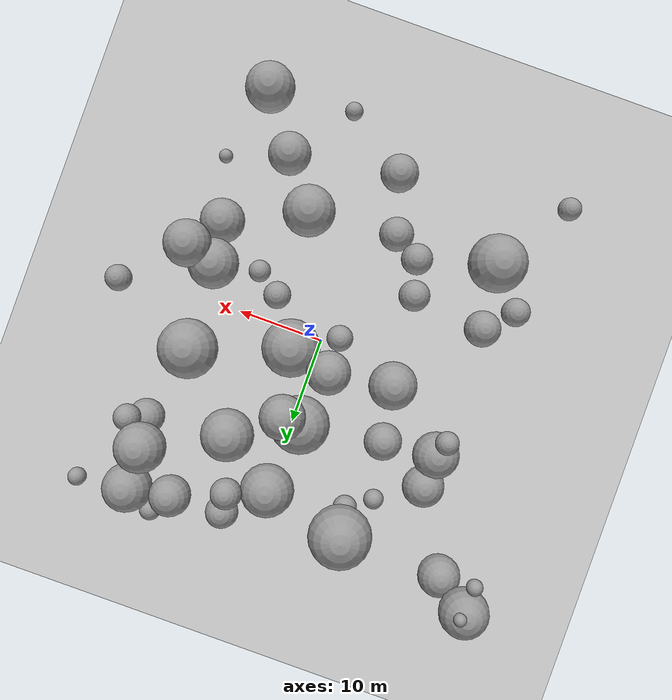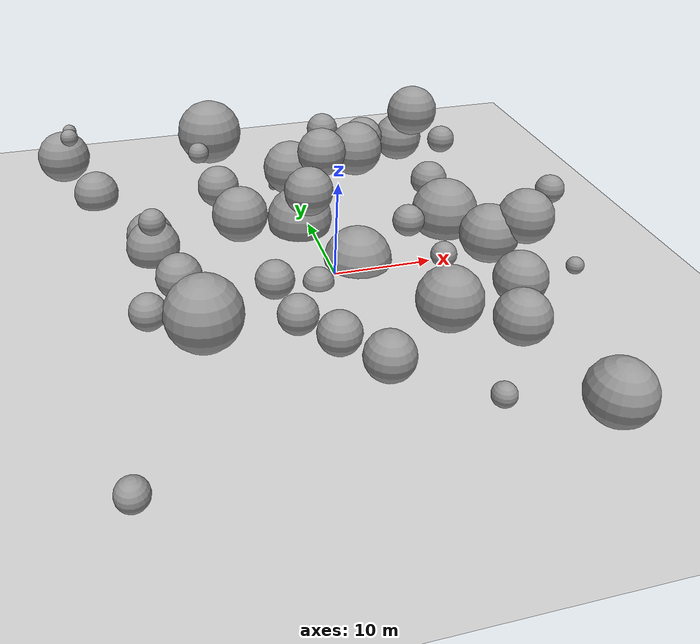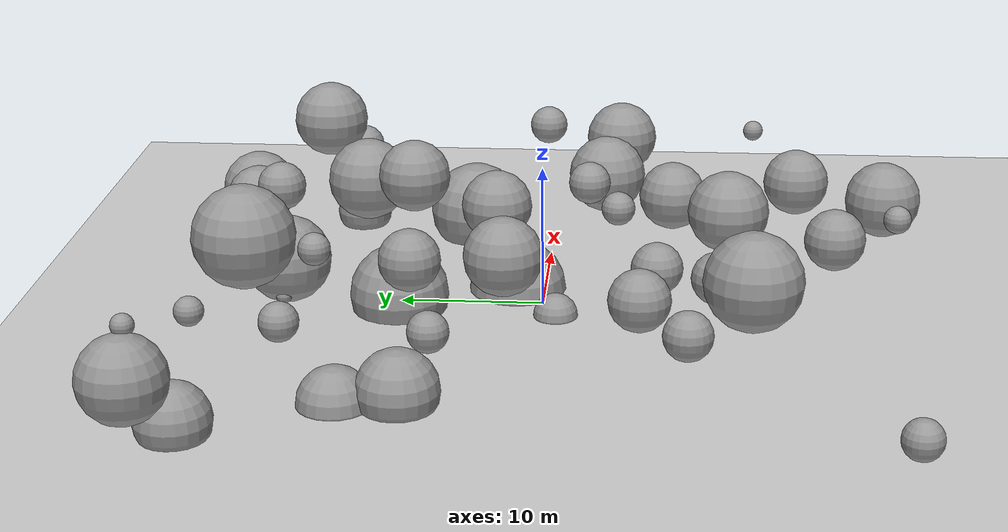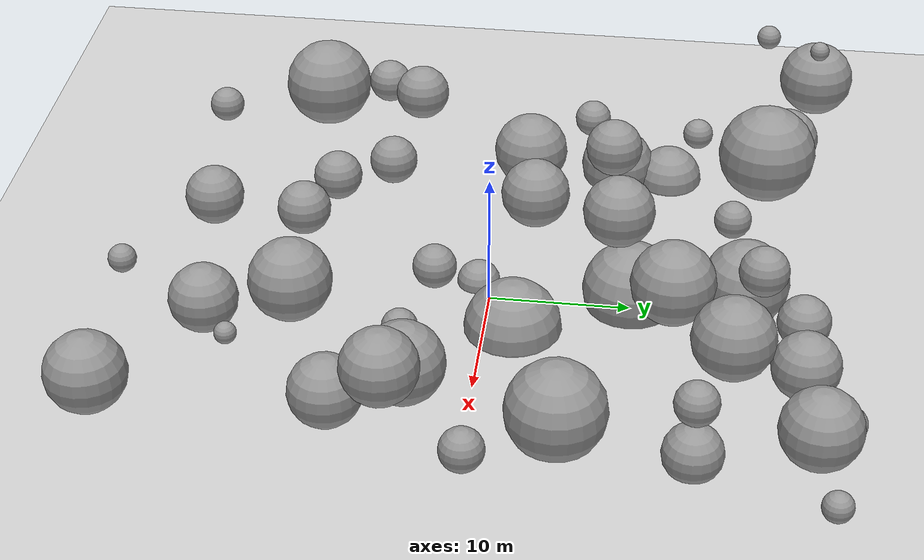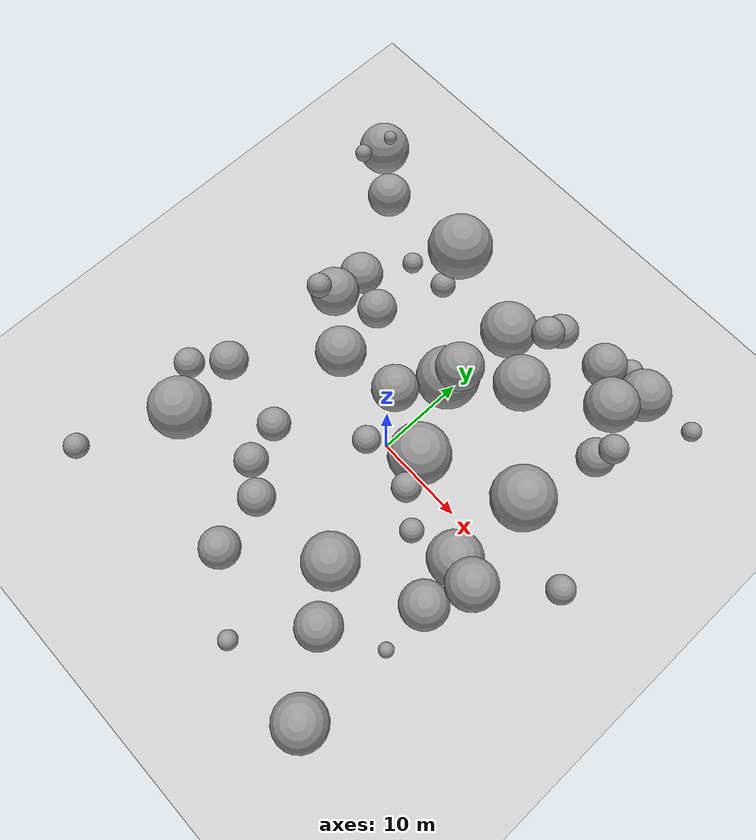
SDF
<?xml version="1.0" ?>
<sdf version='1.7'>
  <world name='default'>
    <light name='sun' type='directional'>
      <cast_shadows>1</cast_shadows>
      <pose>0 0 10 0 -0 0</pose>
      <diffuse>0.8 0.8 0.8 1</diffuse>
      <specular>0.2 0.2 0.2 1</specular>
      <attenuation>
        <range>1000</range>
        <constant>0.9</constant>
        <linear>0.01</linear>
        <quadratic>0.001</quadratic>
      </attenuation>
      <direction>-0.5 0.1 -0.9</direction>
      <spot>
        <inner_angle>0</inner_angle>
        <outer_angle>0</outer_angle>
        <falloff>0</falloff>
      </spot>
    </light>
    <model name='ground_plane'>
      <static>1</static>
      <link name='link'>
        <collision name='collision'>
          <geometry>
            <plane>
              <normal>0 0 1</normal>
              <size>100 100</size>
            </plane>
          </geometry>
          <surface>
            <contact>
              <collide_bitmask>65535</collide_bitmask>
              <ode/>
            </contact>
            <friction>
              <ode>
                <mu>100</mu>
                <mu2>50</mu2>
              </ode>
              <torsional>
                <ode/>
              </torsional>
            </friction>
            <bounce/>
          </surface>
          <max_contacts>10</max_contacts>
        </collision>
        <visual name='visual'>
          <cast_shadows>0</cast_shadows>
          <geometry>
            <plane>
              <normal>0 0 1</normal>
              <size>100 100</size>
            </plane>
          </geometry>
          <material>
            <script>
              <uri>file://media/materials/scripts/gazebo.material</uri>
              <name>Gazebo/Grey</name>
            </script>
          </material>
        </visual>
        <self_collide>0</self_collide>
        <enable_wind>0</enable_wind>
        <kinematic>0</kinematic>
      </link>
    </model>
    <gravity>0 0 -9.8</gravity>
    <magnetic_field>6e-06 2.3e-05 -4.2e-05</magnetic_field>
    <atmosphere type='adiabatic'/>
    <physics type='ode'>
      <max_step_size>0.001</max_step_size>
      <real_time_factor>1</real_time_factor>
      <real_time_update_rate>1000</real_time_update_rate>
    </physics>
    <scene>
      <ambient>0.4 0.4 0.4 1</ambient>
      <background>0.7 0.7 0.7 1</background>
      <shadows>1</shadows>
    </scene>
    <wind/>
    <spherical_coordinates>
      <surface_model>EARTH_WGS84</surface_model>
      <latitude_deg>0</latitude_deg>
      <longitude_deg>0</longitude_deg>
      <elevation>0</elevation>
      <heading_deg>0</heading_deg>
    </spherical_coordinates>

    <model name="sphere_0">
    <static>1</static>
    <pose> -22 21 1 0 0 0 </pose>
      <link name="link">
        <inertial>
          <mass>6304.0448422390255</mass>
          <inertia>
            <ixx>15370.915721975478</ixx>
            <iyy>15370.915721975478</iyy>
            <izz>15370.915721975478</izz>
            <ixy>0</ixy>
            <ixz>0</ixz>
            <iyz>0</iyz>
          </inertia>
        </inertial>
        <collision name="collision">
          <geometry>
            <sphere>
              <radius>2.4689382506158353</radius>
            </sphere>
          </geometry>
        </collision>
        <visual name="visual">
          <geometry>
            <sphere>
              <radius>2.4689382506158353</radius>
            </sphere>
          </geometry>
          <material>
            <script>
              <uri>file://media/materials/scripts/gazebo.material</uri>
              <name>Gazebo/Grey</name>
            </script>
          </material>
        </visual>
      </link>
    </model>

    <model name="sphere_1">
    <static>1</static>
    <pose> -10 8 7 0 0 0 </pose>
      <link name="link">
        <inertial>
          <mass>3614.959449074988</mass>
          <inertia>
            <ixx>6083.777210590986</ixx>
            <iyy>6083.777210590986</iyy>
            <izz>6083.777210590986</izz>
            <ixy>0</ixy>
            <ixz>0</ixz>
            <iyz>0</iyz>
          </inertia>
        </inertial>
        <collision name="collision">
          <geometry>
            <sphere>
              <radius>2.0511855114692956</radius>
            </sphere>
          </geometry>
        </collision>
        <visual name="visual">
          <geometry>
            <sphere>
              <radius>2.0511855114692956</radius>
            </sphere>
          </geometry>
          <material>
            <script>
              <uri>file://media/materials/scripts/gazebo.material</uri>
              <name>Gazebo/Grey</name>
            </script>
          </material>
        </visual>
      </link>
    </model>

    <model name="sphere_2">
    <static>1</static>
    <pose> -24 19 9 0 0 0 </pose>
      <link name="link">
        <inertial>
          <mass>300.7701537424715</mass>
          <inertia>
            <ixx>96.4699710384999</ixx>
            <iyy>96.4699710384999</iyy>
            <izz>96.4699710384999</izz>
            <ixy>0</ixy>
            <ixz>0</ixz>
            <iyz>0</iyz>
          </inertia>
        </inertial>
        <collision name="collision">
          <geometry>
            <sphere>
              <radius>0.8954651933009904</radius>
            </sphere>
          </geometry>
        </collision>
        <visual name="visual">
          <geometry>
            <sphere>
              <radius>0.8954651933009904</radius>
            </sphere>
          </geometry>
          <material>
            <script>
              <uri>file://media/materials/scripts/gazebo.material</uri>
              <name>Gazebo/Grey</name>
            </script>
          </material>
        </visual>
      </link>
    </model>

    <model name="sphere_3">
    <static>1</static>
    <pose> 4 22 3 0 0 0 </pose>
      <link name="link">
        <inertial>
          <mass>2735.4676839567533</mass>
          <inertia>
            <ixx>3822.846846027961</ixx>
            <iyy>3822.846846027961</iyy>
            <izz>3822.846846027961</izz>
            <ixy>0</ixy>
            <ixz>0</ixz>
            <iyz>0</iyz>
          </inertia>
        </inertial>
        <collision name="collision">
          <geometry>
            <sphere>
              <radius>1.8691650836914253</radius>
            </sphere>
          </geometry>
        </collision>
        <visual name="visual">
          <geometry>
            <sphere>
              <radius>1.8691650836914253</radius>
            </sphere>
          </geometry>
          <material>
            <script>
              <uri>file://media/materials/scripts/gazebo.material</uri>
              <name>Gazebo/Grey</name>
            </script>
          </material>
        </visual>
      </link>
    </model>

    <model name="sphere_4">
    <static>1</static>
    <pose> -1 10 1 0 0 0 </pose>
      <link name="link">
        <inertial>
          <mass>17433.930374516916</mass>
          <inertia>
            <ixx>83751.59702305541</ixx>
            <iyy>83751.59702305541</iyy>
            <izz>83751.59702305541</izz>
            <ixy>0</ixy>
            <ixz>0</ixz>
            <iyz>0</iyz>
          </inertia>
        </inertial>
        <collision name="collision">
          <geometry>
            <sphere>
              <radius>3.465523907972898</radius>
            </sphere>
          </geometry>
        </collision>
        <visual name="visual">
          <geometry>
            <sphere>
              <radius>3.465523907972898</radius>
            </sphere>
          </geometry>
          <material>
            <script>
              <uri>file://media/materials/scripts/gazebo.material</uri>
              <name>Gazebo/Grey</name>
            </script>
          </material>
        </visual>
      </link>
    </model>

    <model name="sphere_5">
    <static>1</static>
    <pose> -16 -7 7 0 0 0 </pose>
      <link name="link">
        <inertial>
          <mass>3274.2479315338796</mass>
          <inertia>
            <ixx>5158.461436122134</ixx>
            <iyy>5158.461436122134</iyy>
            <izz>5158.461436122134</izz>
            <ixy>0</ixy>
            <ixz>0</ixz>
            <iyz>0</iyz>
          </inertia>
        </inertial>
        <collision name="collision">
          <geometry>
            <sphere>
              <radius>1.9846060799562095</radius>
            </sphere>
          </geometry>
        </collision>
        <visual name="visual">
          <geometry>
            <sphere>
              <radius>1.9846060799562095</radius>
            </sphere>
          </geometry>
          <material>
            <script>
              <uri>file://media/materials/scripts/gazebo.material</uri>
              <name>Gazebo/Grey</name>
            </script>
          </material>
        </visual>
      </link>
    </model>

    <model name="sphere_6">
    <static>1</static>
    <pose> -17 12 0 0 0 0 </pose>
      <link name="link">
        <inertial>
          <mass>6357.63986233508</mass>
          <inertia>
            <ixx>15589.330230670672</ixx>
            <iyy>15589.330230670672</iyy>
            <izz>15589.330230670672</izz>
            <ixy>0</ixy>
            <ixz>0</ixz>
            <iyz>0</iyz>
          </inertia>
        </inertial>
        <collision name="collision">
          <geometry>
            <sphere>
              <radius>2.475915229713791</radius>
            </sphere>
          </geometry>
        </collision>
        <visual name="visual">
          <geometry>
            <sphere>
              <radius>2.475915229713791</radius>
            </sphere>
          </geometry>
          <material>
            <script>
              <uri>file://media/materials/scripts/gazebo.material</uri>
              <name>Gazebo/Grey</name>
            </script>
          </material>
        </visual>
      </link>
    </model>

    <model name="sphere_7">
    <static>1</static>
    <pose> -19 -10 6 0 0 0 </pose>
      <link name="link">
        <inertial>
          <mass>1644.8838253907272</mass>
          <inertia>
            <ixx>1637.6696551442724</ixx>
            <iyy>1637.6696551442724</iyy>
            <izz>1637.6696551442724</izz>
            <ixy>0</ixy>
            <ixz>0</ixz>
            <iyz>0</iyz>
          </inertia>
        </inertial>
        <collision name="collision">
          <geometry>
            <sphere>
              <radius>1.577667722013219</radius>
            </sphere>
          </geometry>
        </collision>
        <visual name="visual">
          <geometry>
            <sphere>
              <radius>1.577667722013219</radius>
            </sphere>
          </geometry>
          <material>
            <script>
              <uri>file://media/materials/scripts/gazebo.material</uri>
              <name>Gazebo/Grey</name>
            </script>
          </material>
        </visual>
      </link>
    </model>

    <model name="sphere_8">
    <static>1</static>
    <pose> -9 2 7 0 0 0 </pose>
      <link name="link">
        <inertial>
          <mass>7637.3046018213645</mass>
          <inertia>
            <ixx>21162.53902361407</ixx>
            <iyy>21162.53902361407</iyy>
            <izz>21162.53902361407</izz>
            <ixy>0</ixy>
            <ixz>0</ixz>
            <iyz>0</iyz>
          </inertia>
        </inertial>
        <collision name="collision">
          <geometry>
            <sphere>
              <radius>2.631987572097781</radius>
            </sphere>
          </geometry>
        </collision>
        <visual name="visual">
          <geometry>
            <sphere>
              <radius>2.631987572097781</radius>
            </sphere>
          </geometry>
          <material>
            <script>
              <uri>file://media/materials/scripts/gazebo.material</uri>
              <name>Gazebo/Grey</name>
            </script>
          </material>
        </visual>
      </link>
    </model>

    <model name="sphere_9">
    <static>1</static>
    <pose> -9 19 8 0 0 0 </pose>
      <link name="link">
        <inertial>
          <mass>17162.8728969387</mass>
          <inertia>
            <ixx>81592.62312962052</ixx>
            <iyy>81592.62312962052</iyy>
            <izz>81592.62312962052</izz>
            <ixy>0</ixy>
            <ixz>0</ixz>
            <iyz>0</iyz>
          </inertia>
        </inertial>
        <collision name="collision">
          <geometry>
            <sphere>
              <radius>3.4474697091574025</radius>
            </sphere>
          </geometry>
        </collision>
        <visual name="visual">
          <geometry>
            <sphere>
              <radius>3.4474697091574025</radius>
            </sphere>
          </geometry>
          <material>
            <script>
              <uri>file://media/materials/scripts/gazebo.material</uri>
              <name>Gazebo/Grey</name>
            </script>
          </material>
        </visual>
      </link>
    </model>

    <model name="sphere_10">
    <static>1</static>
    <pose> 23 1 6 0 0 0 </pose>
      <link name="link">
        <inertial>
          <mass>1303.3993826508504</mass>
          <inertia>
            <ixx>1111.2116094128164</ixx>
            <iyy>1111.2116094128164</iyy>
            <izz>1111.2116094128164</izz>
            <ixy>0</ixy>
            <ixz>0</ixz>
            <iyz>0</iyz>
          </inertia>
        </inertial>
        <collision name="collision">
          <geometry>
            <sphere>
              <radius>1.459921935304536</radius>
            </sphere>
          </geometry>
        </collision>
        <visual name="visual">
          <geometry>
            <sphere>
              <radius>1.459921935304536</radius>
            </sphere>
          </geometry>
          <material>
            <script>
              <uri>file://media/materials/scripts/gazebo.material</uri>
              <name>Gazebo/Grey</name>
            </script>
          </material>
        </visual>
      </link>
    </model>

    <model name="sphere_11">
    <static>1</static>
    <pose> 9 -5 4 0 0 0 </pose>
      <link name="link">
        <inertial>
          <mass>802.8840087335734</mass>
          <inertia>
            <ixx>495.55165609463813</ixx>
            <iyy>495.55165609463813</iyy>
            <izz>495.55165609463813</izz>
            <ixy>0</ixy>
            <ixz>0</ixz>
            <iyz>0</iyz>
          </inertia>
        </inertial>
        <collision name="collision">
          <geometry>
            <sphere>
              <radius>1.2421901073198702</radius>
            </sphere>
          </geometry>
        </collision>
        <visual name="visual">
          <geometry>
            <sphere>
              <radius>1.2421901073198702</radius>
            </sphere>
          </geometry>
          <material>
            <script>
              <uri>file://media/materials/scripts/gazebo.material</uri>
              <name>Gazebo/Grey</name>
            </script>
          </material>
        </visual>
      </link>
    </model>

    <model name="sphere_12">
    <static>1</static>
    <pose> 2 2 0 0 0 0 </pose>
      <link name="link">
        <inertial>
          <mass>67.90683798653887</mass>
          <inertia>
            <ixx>8.075884502008904</ixx>
            <iyy>8.075884502008904</iyy>
            <izz>8.075884502008904</izz>
            <ixy>0</ixy>
            <ixz>0</ixz>
            <iyz>0</iyz>
          </inertia>
        </inertial>
        <collision name="collision">
          <geometry>
            <sphere>
              <radius>0.5452658513076029</radius>
            </sphere>
          </geometry>
        </collision>
        <visual name="visual">
          <geometry>
            <sphere>
              <radius>0.5452658513076029</radius>
            </sphere>
          </geometry>
          <material>
            <script>
              <uri>file://media/materials/scripts/gazebo.material</uri>
              <name>Gazebo/Grey</name>
            </script>
          </material>
        </visual>
      </link>
    </model>

    <model name="sphere_13">
    <static>1</static>
    <pose> -15 -14 8 0 0 0 </pose>
      <link name="link">
        <inertial>
          <mass>13331.21373307514</mass>
          <inertia>
            <ixx>53552.99169053216</ixx>
            <iyy>53552.99169053216</iyy>
            <izz>53552.99169053216</izz>
            <ixy>0</ixy>
            <ixz>0</ixz>
            <iyz>0</iyz>
          </inertia>
        </inertial>
        <collision name="collision">
          <geometry>
            <sphere>
              <radius>3.169034938793554</radius>
            </sphere>
          </geometry>
        </collision>
        <visual name="visual">
          <geometry>
            <sphere>
              <radius>3.169034938793554</radius>
            </sphere>
          </geometry>
          <material>
            <script>
              <uri>file://media/materials/scripts/gazebo.material</uri>
              <name>Gazebo/Grey</name>
            </script>
          </material>
        </visual>
      </link>
    </model>

    <model name="sphere_14">
    <static>1</static>
    <pose> 3 2 0 0 0 0 </pose>
      <link name="link">
        <inertial>
          <mass>17330.618064283466</mass>
          <inertia>
            <ixx>82926.05472393546</ixx>
            <iyy>82926.05472393546</iyy>
            <izz>82926.05472393546</izz>
            <ixy>0</ixy>
            <ixz>0</ixz>
            <iyz>0</iyz>
          </inertia>
        </inertial>
        <collision name="collision">
          <geometry>
            <sphere>
              <radius>3.4586648533570092</radius>
            </sphere>
          </geometry>
        </collision>
        <visual name="visual">
          <geometry>
            <sphere>
              <radius>3.4586648533570092</radius>
            </sphere>
          </geometry>
          <material>
            <script>
              <uri>file://media/materials/scripts/gazebo.material</uri>
              <name>Gazebo/Grey</name>
            </script>
          </material>
        </visual>
      </link>
    </model>

    <model name="sphere_15">
    <static>1</static>
    <pose> -22 -24 1 0 0 0 </pose>
      <link name="link">
        <inertial>
          <mass>1025.583238097477</mass>
          <inertia>
            <ixx>745.2221854900163</ixx>
            <iyy>745.2221854900163</iyy>
            <izz>745.2221854900163</izz>
            <ixy>0</ixy>
            <ixz>0</ixz>
            <iyz>0</iyz>
          </inertia>
        </inertial>
        <collision name="collision">
          <geometry>
            <sphere>
              <radius>1.3478061539093313</radius>
            </sphere>
          </geometry>
        </collision>
        <visual name="visual">
          <geometry>
            <sphere>
              <radius>1.3478061539093313</radius>
            </sphere>
          </geometry>
          <material>
            <script>
              <uri>file://media/materials/scripts/gazebo.material</uri>
              <name>Gazebo/Grey</name>
            </script>
          </material>
        </visual>
      </link>
    </model>

    <model name="sphere_16">
    <static>1</static>
    <pose> 1 9 9 0 0 0 </pose>
      <link name="link">
        <inertial>
          <mass>6331.580114597177</mass>
          <inertia>
            <ixx>15482.975594072212</ixx>
            <iyy>15482.975594072212</iyy>
            <izz>15482.975594072212</izz>
            <ixy>0</ixy>
            <ixz>0</ixz>
            <iyz>0</iyz>
          </inertia>
        </inertial>
        <collision name="collision">
          <geometry>
            <sphere>
              <radius>2.4725276998307857</radius>
            </sphere>
          </geometry>
        </collision>
        <visual name="visual">
          <geometry>
            <sphere>
              <radius>2.4725276998307857</radius>
            </sphere>
          </geometry>
          <material>
            <script>
              <uri>file://media/materials/scripts/gazebo.material</uri>
              <name>Gazebo/Grey</name>
            </script>
          </material>
        </visual>
      </link>
    </model>

    <model name="sphere_17">
    <static>1</static>
    <pose> 5 -25 5 0 0 0 </pose>
      <link name="link">
        <inertial>
          <mass>412.73709180956837</mass>
          <inertia>
            <ixx>163.47703466977035</ixx>
            <iyy>163.47703466977035</iyy>
            <izz>163.47703466977035</izz>
            <ixy>0</ixy>
            <ixz>0</ixz>
            <iyz>0</iyz>
          </inertia>
        </inertial>
        <collision name="collision">
          <geometry>
            <sphere>
              <radius>0.9950883233912462</radius>
            </sphere>
          </geometry>
        </collision>
        <visual name="visual">
          <geometry>
            <sphere>
              <radius>0.9950883233912462</radius>
            </sphere>
          </geometry>
          <material>
            <script>
              <uri>file://media/materials/scripts/gazebo.material</uri>
              <name>Gazebo/Grey</name>
            </script>
          </material>
        </visual>
      </link>
    </model>

    <model name="sphere_18">
    <static>1</static>
    <pose> 14 -4 5 0 0 0 </pose>
      <link name="link">
        <inertial>
          <mass>9671.974458461413</mass>
          <inertia>
            <ixx>31370.840411934012</ixx>
            <iyy>31370.840411934012</iyy>
            <izz>31370.840411934012</izz>
            <ixy>0</ixy>
            <ixz>0</ixz>
            <iyz>0</iyz>
          </inertia>
        </inertial>
        <collision name="collision">
          <geometry>
            <sphere>
              <radius>2.8475772235510735</radius>
            </sphere>
          </geometry>
        </collision>
        <visual name="visual">
          <geometry>
            <sphere>
              <radius>2.8475772235510735</radius>
            </sphere>
          </geometry>
          <material>
            <script>
              <uri>file://media/materials/scripts/gazebo.material</uri>
              <name>Gazebo/Grey</name>
            </script>
          </material>
        </visual>
      </link>
    </model>

    <model name="sphere_19">
    <static>1</static>
    <pose> -7 -12 5 0 0 0 </pose>
      <link name="link">
        <inertial>
          <mass>2288.310301973909</mass>
          <inertia>
            <ixx>2839.176847158699</ixx>
            <iyy>2839.176847158699</iyy>
            <izz>2839.176847158699</izz>
            <ixy>0</ixy>
            <ixz>0</ixz>
            <iyz>0</iyz>
          </inertia>
        </inertial>
        <collision name="collision">
          <geometry>
            <sphere>
              <radius>1.7612003732619348</radius>
            </sphere>
          </geometry>
        </collision>
        <visual name="visual">
          <geometry>
            <sphere>
              <radius>1.7612003732619348</radius>
            </sphere>
          </geometry>
          <material>
            <script>
              <uri>file://media/materials/scripts/gazebo.material</uri>
              <name>Gazebo/Grey</name>
            </script>
          </material>
        </visual>
      </link>
    </model>

    <model name="sphere_20">
    <static>1</static>
    <pose> -2 -1 0 0 0 0 </pose>
      <link name="link">
        <inertial>
          <mass>1549.3632262910603</mass>
          <inertia>
            <ixx>1482.2552307769074</ixx>
            <iyy>1482.2552307769074</iyy>
            <izz>1482.2552307769074</izz>
            <ixy>0</ixy>
            <ixz>0</ixz>
            <iyz>0</iyz>
          </inertia>
        </inertial>
        <collision name="collision">
          <geometry>
            <sphere>
              <radius>1.5465176405296739</radius>
            </sphere>
          </geometry>
        </collision>
        <visual name="visual">
          <geometry>
            <sphere>
              <radius>1.5465176405296739</radius>
            </sphere>
          </geometry>
          <material>
            <script>
              <uri>file://media/materials/scripts/gazebo.material</uri>
              <name>Gazebo/Grey</name>
            </script>
          </material>
        </visual>
      </link>
    </model>

    <model name="sphere_21">
    <static>1</static>
    <pose> 6 -13 5 0 0 0 </pose>
      <link name="link">
        <inertial>
          <mass>10437.80872239945</mass>
          <inertia>
            <ixx>35619.116395667545</ixx>
            <iyy>35619.116395667545</iyy>
            <izz>35619.116395667545</izz>
            <ixy>0</ixy>
            <ixz>0</ixz>
            <iyz>0</iyz>
          </inertia>
        </inertial>
        <collision name="collision">
          <geometry>
            <sphere>
              <radius>2.9208342208272895</radius>
            </sphere>
          </geometry>
        </collision>
        <visual name="visual">
          <geometry>
            <sphere>
              <radius>2.9208342208272895</radius>
            </sphere>
          </geometry>
          <material>
            <script>
              <uri>file://media/materials/scripts/gazebo.material</uri>
              <name>Gazebo/Grey</name>
            </script>
          </material>
        </visual>
      </link>
    </model>

    <model name="sphere_22">
    <static>1</static>
    <pose> -2 3 8 0 0 0 </pose>
      <link name="link">
        <inertial>
          <mass>5750.031626446294</mass>
          <inertia>
            <ixx>13186.148857234906</ixx>
            <iyy>13186.148857234906</iyy>
            <izz>13186.148857234906</izz>
            <ixy>0</ixy>
            <ixz>0</ixz>
            <iyz>0</iyz>
          </inertia>
        </inertial>
        <collision name="collision">
          <geometry>
            <sphere>
              <radius>2.394384402186518</radius>
            </sphere>
          </geometry>
        </collision>
        <visual name="visual">
          <geometry>
            <sphere>
              <radius>2.394384402186518</radius>
            </sphere>
          </geometry>
          <material>
            <script>
              <uri>file://media/materials/scripts/gazebo.material</uri>
              <name>Gazebo/Grey</name>
            </script>
          </material>
        </visual>
      </link>
    </model>

    <model name="sphere_23">
    <static>1</static>
    <pose> 10 -18 6 0 0 0 </pose>
      <link name="link">
        <inertial>
          <mass>5511.783995547832</mass>
          <inertia>
            <ixx>12288.189519641015</ixx>
            <iyy>12288.189519641015</iyy>
            <izz>12288.189519641015</izz>
            <ixy>0</ixy>
            <ixz>0</ixz>
            <iyz>0</iyz>
          </inertia>
        </inertial>
        <collision name="collision">
          <geometry>
            <sphere>
              <radius>2.3608470950152207</radius>
            </sphere>
          </geometry>
        </collision>
        <visual name="visual">
          <geometry>
            <sphere>
              <radius>2.3608470950152207</radius>
            </sphere>
          </geometry>
          <material>
            <script>
              <uri>file://media/materials/scripts/gazebo.material</uri>
              <name>Gazebo/Grey</name>
            </script>
          </material>
        </visual>
      </link>
    </model>

    <model name="sphere_24">
    <static>1</static>
    <pose> -2 -20 6 0 0 0 </pose>
      <link name="link">
        <inertial>
          <mass>3810.0031753762705</mass>
          <inertia>
            <ixx>6640.6381261397455</ixx>
            <iyy>6640.6381261397455</iyy>
            <izz>6640.6381261397455</izz>
            <ixy>0</ixy>
            <ixz>0</ixz>
            <iyz>0</iyz>
          </inertia>
        </inertial>
        <collision name="collision">
          <geometry>
            <sphere>
              <radius>2.087431547846422</radius>
            </sphere>
          </geometry>
        </collision>
        <visual name="visual">
          <geometry>
            <sphere>
              <radius>2.087431547846422</radius>
            </sphere>
          </geometry>
          <material>
            <script>
              <uri>file://media/materials/scripts/gazebo.material</uri>
              <name>Gazebo/Grey</name>
            </script>
          </material>
        </visual>
      </link>
    </model>

    <model name="sphere_25">
    <static>1</static>
    <pose> 0 18 3 0 0 0 </pose>
      <link name="link">
        <inertial>
          <mass>12116.623268982588</mass>
          <inertia>
            <ixx>45670.62203629303</ixx>
            <iyy>45670.62203629303</iyy>
            <izz>45670.62203629303</izz>
            <ixy>0</ixy>
            <ixz>0</ixz>
            <iyz>0</iyz>
          </inertia>
        </inertial>
        <collision name="collision">
          <geometry>
            <sphere>
              <radius>3.0697122353188653</radius>
            </sphere>
          </geometry>
        </collision>
        <visual name="visual">
          <geometry>
            <sphere>
              <radius>3.0697122353188653</radius>
            </sphere>
          </geometry>
          <material>
            <script>
              <uri>file://media/materials/scripts/gazebo.material</uri>
              <name>Gazebo/Grey</name>
            </script>
          </material>
        </visual>
      </link>
    </model>

    <model name="sphere_26">
    <static>1</static>
    <pose> -11 14 8 0 0 0 </pose>
      <link name="link">
        <inertial>
          <mass>513.7556381328399</mass>
          <inertia>
            <ixx>235.46620633168817</ixx>
            <iyy>235.46620633168817</iyy>
            <izz>235.46620633168817</izz>
            <ixy>0</ixy>
            <ixz>0</ixz>
            <iyz>0</iyz>
          </inertia>
        </inertial>
        <collision name="collision">
          <geometry>
            <sphere>
              <radius>1.0704243928219066</radius>
            </sphere>
          </geometry>
        </collision>
        <visual name="visual">
          <geometry>
            <sphere>
              <radius>1.0704243928219066</radius>
            </sphere>
          </geometry>
          <material>
            <script>
              <uri>file://media/materials/scripts/gazebo.material</uri>
              <name>Gazebo/Grey</name>
            </script>
          </material>
        </visual>
      </link>
    </model>

    <model name="sphere_27">
    <static>1</static>
    <pose> -9 17 2 0 0 0 </pose>
      <link name="link">
        <inertial>
          <mass>1101.1587865518961</mass>
          <inertia>
            <ixx>838.9785021657165</ixx>
            <iyy>838.9785021657165</iyy>
            <izz>838.9785021657165</izz>
            <ixy>0</ixy>
            <ixz>0</ixz>
            <iyz>0</iyz>
          </inertia>
        </inertial>
        <collision name="collision">
          <geometry>
            <sphere>
              <radius>1.3801314304795218</radius>
            </sphere>
          </geometry>
        </collision>
        <visual name="visual">
          <geometry>
            <sphere>
              <radius>1.3801314304795218</radius>
            </sphere>
          </geometry>
          <material>
            <script>
              <uri>file://media/materials/scripts/gazebo.material</uri>
              <name>Gazebo/Grey</name>
            </script>
          </material>
        </visual>
      </link>
    </model>

    <model name="sphere_28">
    <static>1</static>
    <pose> -25 23 5 0 0 0 </pose>
      <link name="link">
        <inertial>
          <mass>9298.30319558398</mass>
          <inertia>
            <ixx>29376.976156946108</ixx>
            <iyy>29376.976156946108</iyy>
            <izz>29376.976156946108</izz>
            <ixy>0</ixy>
            <ixz>0</ixz>
            <iyz>0</iyz>
          </inertia>
        </inertial>
        <collision name="collision">
          <geometry>
            <sphere>
              <radius>2.8104230455707313</radius>
            </sphere>
          </geometry>
        </collision>
        <visual name="visual">
          <geometry>
            <sphere>
              <radius>2.8104230455707313</radius>
            </sphere>
          </geometry>
          <material>
            <script>
              <uri>file://media/materials/scripts/gazebo.material</uri>
              <name>Gazebo/Grey</name>
            </script>
          </material>
        </visual>
      </link>
    </model>

    <model name="sphere_29">
    <static>1</static>
    <pose> 15 -9 3 0 0 0 </pose>
      <link name="link">
        <inertial>
          <mass>6913.292294427958</mass>
          <inertia>
            <ixx>17925.68596643845</ixx>
            <iyy>17925.68596643845</iyy>
            <izz>17925.68596643845</izz>
            <ixy>0</ixy>
            <ixz>0</ixz>
            <iyz>0</iyz>
          </inertia>
        </inertial>
        <collision name="collision">
          <geometry>
            <sphere>
              <radius>2.546041255893368</radius>
            </sphere>
          </geometry>
        </collision>
        <visual name="visual">
          <geometry>
            <sphere>
              <radius>2.546041255893368</radius>
            </sphere>
          </geometry>
          <material>
            <script>
              <uri>file://media/materials/scripts/gazebo.material</uri>
              <name>Gazebo/Grey</name>
            </script>
          </material>
        </visual>
      </link>
    </model>

    <model name="sphere_30">
    <static>1</static>
    <pose> 17 -5 7 0 0 0 </pose>
      <link name="link">
        <inertial>
          <mass>7545.304896355475</mass>
          <inertia>
            <ixx>20739.370718549308</ixx>
            <iyy>20739.370718549308</iyy>
            <izz>20739.370718549308</izz>
            <ixy>0</ixy>
            <ixz>0</ixz>
            <iyz>0</iyz>
          </inertia>
        </inertial>
        <collision name="collision">
          <geometry>
            <sphere>
              <radius>2.621376458073707</radius>
            </sphere>
          </geometry>
        </collision>
        <visual name="visual">
          <geometry>
            <sphere>
              <radius>2.621376458073707</radius>
            </sphere>
          </geometry>
          <material>
            <script>
              <uri>file://media/materials/scripts/gazebo.material</uri>
              <name>Gazebo/Grey</name>
            </script>
          </material>
        </visual>
      </link>
    </model>

    <model name="sphere_31">
    <static>1</static>
    <pose> -17 7 1 0 0 0 </pose>
      <link name="link">
        <inertial>
          <mass>1342.1753182257628</mass>
          <inertia>
            <ixx>1166.8534968189517</ixx>
            <iyy>1166.8534968189517</iyy>
            <izz>1166.8534968189517</izz>
            <ixy>0</ixy>
            <ixz>0</ixz>
            <iyz>0</iyz>
          </inertia>
        </inertial>
        <collision name="collision">
          <geometry>
            <sphere>
              <radius>1.4742581804034165</radius>
            </sphere>
          </geometry>
        </collision>
        <visual name="visual">
          <geometry>
            <sphere>
              <radius>1.4742581804034165</radius>
            </sphere>
          </geometry>
          <material>
            <script>
              <uri>file://media/materials/scripts/gazebo.material</uri>
              <name>Gazebo/Grey</name>
            </script>
          </material>
        </visual>
      </link>
    </model>

    <model name="sphere_32">
    <static>1</static>
    <pose> 4 19 7 0 0 0 </pose>
      <link name="link">
        <inertial>
          <mass>2131.7112121429636</mass>
          <inertia>
            <ixx>2522.7925175141327</ixx>
            <iyy>2522.7925175141327</iyy>
            <izz>2522.7925175141327</izz>
            <ixy>0</ixy>
            <ixz>0</ixz>
            <iyz>0</iyz>
          </inertia>
        </inertial>
        <collision name="collision">
          <geometry>
            <sphere>
              <radius>1.720071843250976</radius>
            </sphere>
          </geometry>
        </collision>
        <visual name="visual">
          <geometry>
            <sphere>
              <radius>1.720071843250976</radius>
            </sphere>
          </geometry>
          <material>
            <script>
              <uri>file://media/materials/scripts/gazebo.material</uri>
              <name>Gazebo/Grey</name>
            </script>
          </material>
        </visual>
      </link>
    </model>

    <model name="sphere_33">
    <static>1</static>
    <pose> 6 -3 7 0 0 0 </pose>
      <link name="link">
        <inertial>
          <mass>1381.8827059567348</mass>
          <inertia>
            <ixx>1224.9533639506901</ixx>
            <iyy>1224.9533639506901</iyy>
            <izz>1224.9533639506901</izz>
            <ixy>0</ixy>
            <ixz>0</ixz>
            <iyz>0</iyz>
          </inertia>
        </inertial>
        <collision name="collision">
          <geometry>
            <sphere>
              <radius>1.4886554468799855</radius>
            </sphere>
          </geometry>
        </collision>
        <visual name="visual">
          <geometry>
            <sphere>
              <radius>1.4886554468799855</radius>
            </sphere>
          </geometry>
          <material>
            <script>
              <uri>file://media/materials/scripts/gazebo.material</uri>
              <name>Gazebo/Grey</name>
            </script>
          </material>
        </visual>
      </link>
    </model>

    <model name="sphere_34">
    <static>1</static>
    <pose> -17 6 5 0 0 0 </pose>
      <link name="link">
        <inertial>
          <mass>1002.7860585996068</mass>
          <inertia>
            <ixx>717.8186386914875</ixx>
            <iyy>717.8186386914875</iyy>
            <izz>717.8186386914875</izz>
            <ixy>0</ixy>
            <ixz>0</ixz>
            <iyz>0</iyz>
          </inertia>
        </inertial>
        <collision name="collision">
          <geometry>
            <sphere>
              <radius>1.337744660068021</radius>
            </sphere>
          </geometry>
        </collision>
        <visual name="visual">
          <geometry>
            <sphere>
              <radius>1.337744660068021</radius>
            </sphere>
          </geometry>
          <material>
            <script>
              <uri>file://media/materials/scripts/gazebo.material</uri>
              <name>Gazebo/Grey</name>
            </script>
          </material>
        </visual>
      </link>
    </model>

    <model name="sphere_35">
    <static>1</static>
    <pose> 15 23 3 0 0 0 </pose>
      <link name="link">
        <inertial>
          <mass>9246.868055774496</mass>
          <inertia>
            <ixx>29106.636326370346</ixx>
            <iyy>29106.636326370346</iyy>
            <izz>29106.636326370346</izz>
            <ixy>0</ixy>
            <ixz>0</ixz>
            <iyz>0</iyz>
          </inertia>
        </inertial>
        <collision name="collision">
          <geometry>
            <sphere>
              <radius>2.8052313504137434</radius>
            </sphere>
          </geometry>
        </collision>
        <visual name="visual">
          <geometry>
            <sphere>
              <radius>2.8052313504137434</radius>
            </sphere>
          </geometry>
          <material>
            <script>
              <uri>file://media/materials/scripts/gazebo.material</uri>
              <name>Gazebo/Grey</name>
            </script>
          </material>
        </visual>
      </link>
    </model>

    <model name="sphere_36">
    <static>1</static>
    <pose> 16 -15 8 0 0 0 </pose>
      <link name="link">
        <inertial>
          <mass>166.74519186133662</mass>
          <inertia>
            <ixx>36.093011350849665</ixx>
            <iyy>36.093011350849665</iyy>
            <izz>36.093011350849665</izz>
            <ixy>0</ixy>
            <ixz>0</ixz>
            <iyz>0</iyz>
          </inertia>
        </inertial>
        <collision name="collision">
          <geometry>
            <sphere>
              <radius>0.735622329337597</radius>
            </sphere>
          </geometry>
        </collision>
        <visual name="visual">
          <geometry>
            <sphere>
              <radius>0.735622329337597</radius>
            </sphere>
          </geometry>
          <material>
            <script>
              <uri>file://media/materials/scripts/gazebo.material</uri>
              <name>Gazebo/Grey</name>
            </script>
          </material>
        </visual>
      </link>
    </model>

    <model name="sphere_37">
    <static>1</static>
    <pose> 14 17 9 0 0 0 </pose>
      <link name="link">
        <inertial>
          <mass>8612.25120822306</mass>
          <inertia>
            <ixx>25854.05888983777</ixx>
            <iyy>25854.05888983777</iyy>
            <izz>25854.05888983777</izz>
            <ixy>0</ixy>
            <ixz>0</ixz>
            <iyz>0</iyz>
          </inertia>
        </inertial>
        <collision name="collision">
          <geometry>
            <sphere>
              <radius>2.739529785227139</radius>
            </sphere>
          </geometry>
        </collision>
        <visual name="visual">
          <geometry>
            <sphere>
              <radius>2.739529785227139</radius>
            </sphere>
          </geometry>
          <material>
            <script>
              <uri>file://media/materials/scripts/gazebo.material</uri>
              <name>Gazebo/Grey</name>
            </script>
          </material>
        </visual>
      </link>
    </model>

    <model name="sphere_38">
    <static>1</static>
    <pose> 16 15 1 0 0 0 </pose>
      <link name="link">
        <inertial>
          <mass>3749.8150389199386</mass>
          <inertia>
            <ixx>6466.719091317763</ixx>
            <iyy>6466.719091317763</iyy>
            <izz>6466.719091317763</izz>
            <ixy>0</ixy>
            <ixz>0</ixz>
            <iyz>0</iyz>
          </inertia>
        </inertial>
        <collision name="collision">
          <geometry>
            <sphere>
              <radius>2.0763811571647377</radius>
            </sphere>
          </geometry>
        </collision>
        <visual name="visual">
          <geometry>
            <sphere>
              <radius>2.0763811571647377</radius>
            </sphere>
          </geometry>
          <material>
            <script>
              <uri>file://media/materials/scripts/gazebo.material</uri>
              <name>Gazebo/Grey</name>
            </script>
          </material>
        </visual>
      </link>
    </model>

    <model name="sphere_39">
    <static>1</static>
    <pose> 14 6 2 0 0 0 </pose>
      <link name="link">
        <inertial>
          <mass>17712.873278333827</mass>
          <inertia>
            <ixx>85996.86336253484</ixx>
            <iyy>85996.86336253484</iyy>
            <izz>85996.86336253484</izz>
            <ixy>0</ixy>
            <ixz>0</ixz>
            <iyz>0</iyz>
          </inertia>
        </inertial>
        <collision name="collision">
          <geometry>
            <sphere>
              <radius>3.483908995398422</radius>
            </sphere>
          </geometry>
        </collision>
        <visual name="visual">
          <geometry>
            <sphere>
              <radius>3.483908995398422</radius>
            </sphere>
          </geometry>
          <material>
            <script>
              <uri>file://media/materials/scripts/gazebo.material</uri>
              <name>Gazebo/Grey</name>
            </script>
          </material>
        </visual>
      </link>
    </model>

    <model name="sphere_40">
    <static>1</static>
    <pose> -17 8 1 0 0 0 </pose>
      <link name="link">
        <inertial>
          <mass>8580.777118286638</mass>
          <inertia>
            <ixx>25696.77494819666</ixx>
            <iyy>25696.77494819666</iyy>
            <izz>25696.77494819666</izz>
            <ixy>0</ixy>
            <ixz>0</ixz>
            <iyz>0</iyz>
          </inertia>
        </inertial>
        <collision name="collision">
          <geometry>
            <sphere>
              <radius>2.736188442139107</radius>
            </sphere>
          </geometry>
        </collision>
        <visual name="visual">
          <geometry>
            <sphere>
              <radius>2.736188442139107</radius>
            </sphere>
          </geometry>
          <material>
            <script>
              <uri>file://media/materials/scripts/gazebo.material</uri>
              <name>Gazebo/Grey</name>
            </script>
          </material>
        </visual>
      </link>
    </model>

    <model name="sphere_41">
    <static>1</static>
    <pose> 12 25 1 0 0 0 </pose>
      <link name="link">
        <inertial>
          <mass>846.1875593750759</mass>
          <inertia>
            <ixx>540.8937690990784</ixx>
            <iyy>540.8937690990784</iyy>
            <izz>540.8937690990784</izz>
            <ixy>0</ixy>
            <ixz>0</ixz>
            <iyz>0</iyz>
          </inertia>
        </inertial>
        <collision name="collision">
          <geometry>
            <sphere>
              <radius>1.2641327290579971</radius>
            </sphere>
          </geometry>
        </collision>
        <visual name="visual">
          <geometry>
            <sphere>
              <radius>1.2641327290579971</radius>
            </sphere>
          </geometry>
          <material>
            <script>
              <uri>file://media/materials/scripts/gazebo.material</uri>
              <name>Gazebo/Grey</name>
            </script>
          </material>
        </visual>
      </link>
    </model>

    <model name="sphere_42">
    <static>1</static>
    <pose> -24 23 8 0 0 0 </pose>
      <link name="link">
        <inertial>
          <mass>161.3821592761985</mass>
          <inertia>
            <ixx>34.17906057283528</ixx>
            <iyy>34.17906057283528</iyy>
            <izz>34.17906057283528</izz>
            <ixy>0</ixy>
            <ixz>0</ixz>
            <iyz>0</iyz>
          </inertia>
        </inertial>
        <collision name="collision">
          <geometry>
            <sphere>
              <radius>0.7276496155542503</radius>
            </sphere>
          </geometry>
        </collision>
        <visual name="visual">
          <geometry>
            <sphere>
              <radius>0.7276496155542503</radius>
            </sphere>
          </geometry>
          <material>
            <script>
              <uri>file://media/materials/scripts/gazebo.material</uri>
              <name>Gazebo/Grey</name>
            </script>
          </material>
        </visual>
      </link>
    </model>

    <model name="sphere_43">
    <static>1</static>
    <pose> 10 22 4 0 0 0 </pose>
      <link name="link">
        <inertial>
          <mass>5444.342065235752</mass>
          <inertia>
            <ixx>12038.616825476514</ixx>
            <iyy>12038.616825476514</iyy>
            <izz>12038.616825476514</izz>
            <ixy>0</ixy>
            <ixz>0</ixz>
            <iyz>0</iyz>
          </inertia>
        </inertial>
        <collision name="collision">
          <geometry>
            <sphere>
              <radius>2.3511784808018454</radius>
            </sphere>
          </geometry>
        </collision>
        <visual name="visual">
          <geometry>
            <sphere>
              <radius>2.3511784808018454</radius>
            </sphere>
          </geometry>
          <material>
            <script>
              <uri>file://media/materials/scripts/gazebo.material</uri>
              <name>Gazebo/Grey</name>
            </script>
          </material>
        </visual>
      </link>
    </model>

    <model name="sphere_44">
    <static>1</static>
    <pose> -8 -8 6 0 0 0 </pose>
      <link name="link">
        <inertial>
          <mass>2137.010140439859</mass>
          <inertia>
            <ixx>2533.2529480547037</ixx>
            <iyy>2533.2529480547037</iyy>
            <izz>2533.2529480547037</izz>
            <ixy>0</ixy>
            <ixz>0</ixz>
            <iyz>0</iyz>
          </inertia>
        </inertial>
        <collision name="collision">
          <geometry>
            <sphere>
              <radius>1.7214958941153304</radius>
            </sphere>
          </geometry>
        </collision>
        <visual name="visual">
          <geometry>
            <sphere>
              <radius>1.7214958941153304</radius>
            </sphere>
          </geometry>
          <material>
            <script>
              <uri>file://media/materials/scripts/gazebo.material</uri>
              <name>Gazebo/Grey</name>
            </script>
          </material>
        </visual>
      </link>
    </model>

    <model name="sphere_45">
    <static>1</static>
    <pose> -2 18 1 0 0 0 </pose>
      <link name="link">
        <inertial>
          <mass>79.459208834573</mass>
          <inertia>
            <ixx>10.493200694799743</ixx>
            <iyy>10.493200694799743</iyy>
            <izz>10.493200694799743</izz>
            <ixy>0</ixy>
            <ixz>0</ixz>
            <iyz>0</iyz>
          </inertia>
        </inertial>
        <collision name="collision">
          <geometry>
            <sphere>
              <radius>0.5745818135432242</radius>
            </sphere>
          </geometry>
        </collision>
        <visual name="visual">
          <geometry>
            <sphere>
              <radius>0.5745818135432242</radius>
            </sphere>
          </geometry>
          <material>
            <script>
              <uri>file://media/materials/scripts/gazebo.material</uri>
              <name>Gazebo/Grey</name>
            </script>
          </material>
        </visual>
      </link>
    </model>

    <model name="sphere_46">
    <static>1</static>
    <pose> 21 24 2 0 0 0 </pose>
      <link name="link">
        <inertial>
          <mass>476.97447704698527</mass>
          <inertia>
            <ixx>208.04605545106685</ixx>
            <iyy>208.04605545106685</iyy>
            <izz>208.04605545106685</izz>
            <ixy>0</ixy>
            <ixz>0</ixz>
            <iyz>0</iyz>
          </inertia>
        </inertial>
        <collision name="collision">
          <geometry>
            <sphere>
              <radius>1.0442444532173707</radius>
            </sphere>
          </geometry>
        </collision>
        <visual name="visual">
          <geometry>
            <sphere>
              <radius>1.0442444532173707</radius>
            </sphere>
          </geometry>
          <material>
            <script>
              <uri>file://media/materials/scripts/gazebo.material</uri>
              <name>Gazebo/Grey</name>
            </script>
          </material>
        </visual>
      </link>
    </model>

    <model name="sphere_47">
    <static>1</static>
    <pose> 17 15 6 0 0 0 </pose>
      <link name="link">
        <inertial>
          <mass>1409.3382720866114</mass>
          <inertia>
            <ixx>1265.7841742018231</ixx>
            <iyy>1265.7841742018231</iyy>
            <izz>1265.7841742018231</izz>
            <ixy>0</ixy>
            <ixz>0</ixz>
            <iyz>0</iyz>
          </inertia>
        </inertial>
        <collision name="collision">
          <geometry>
            <sphere>
              <radius>1.498449848552562</radius>
            </sphere>
          </geometry>
        </collision>
        <visual name="visual">
          <geometry>
            <sphere>
              <radius>1.498449848552562</radius>
            </sphere>
          </geometry>
          <material>
            <script>
              <uri>file://media/materials/scripts/gazebo.material</uri>
              <name>Gazebo/Grey</name>
            </script>
          </material>
        </visual>
      </link>
    </model>

    <model name="sphere_48">
    <static>1</static>
    <pose> 15 -25 3 0 0 0 </pose>
      <link name="link">
        <inertial>
          <mass>9585.970793321962</mass>
          <inertia>
            <ixx>30907.301416887014</ixx>
            <iyy>30907.301416887014</iyy>
            <izz>30907.301416887014</izz>
            <ixy>0</ixy>
            <ixz>0</ixz>
            <iyz>0</iyz>
          </inertia>
        </inertial>
        <collision name="collision">
          <geometry>
            <sphere>
              <radius>2.8391118173029875</radius>
            </sphere>
          </geometry>
        </collision>
        <visual name="visual">
          <geometry>
            <sphere>
              <radius>2.8391118173029875</radius>
            </sphere>
          </geometry>
          <material>
            <script>
              <uri>file://media/materials/scripts/gazebo.material</uri>
              <name>Gazebo/Grey</name>
            </script>
          </material>
        </visual>
      </link>
    </model>

    <model name="sphere_49">
    <static>1</static>
    <pose> 6 13 7 0 0 0 </pose>
      <link name="link">
        <inertial>
          <mass>10216.906061909169</mass>
          <inertia>
            <ixx>34371.61345215008</ixx>
            <iyy>34371.61345215008</iyy>
            <izz>34371.61345215008</izz>
            <ixy>0</ixy>
            <ixz>0</ixz>
            <iyz>0</iyz>
          </inertia>
        </inertial>
        <collision name="collision">
          <geometry>
            <sphere>
              <radius>2.900081905846644</radius>
            </sphere>
          </geometry>
        </collision>
        <visual name="visual">
          <geometry>
            <sphere>
              <radius>2.900081905846644</radius>
            </sphere>
          </geometry>
          <material>
            <script>
              <uri>file://media/materials/scripts/gazebo.material</uri>
              <name>Gazebo/Grey</name>
            </script>
          </material>
        </visual>
      </link>
    </model>

    <model name="sphere_50">
    <static>1</static>
    <pose> -4 -14 4 0 0 0 </pose>
      <link name="link">
        <inertial>
          <mass>3059.0160504680434</mass>
          <inertia>
            <ixx>4605.786946983831</ixx>
            <iyy>4605.786946983831</iyy>
            <izz>4605.786946983831</izz>
            <ixy>0</ixy>
            <ixz>0</ixz>
            <iyz>0</iyz>
          </inertia>
        </inertial>
        <collision name="collision">
          <geometry>
            <sphere>
              <radius>1.9401309722610058</radius>
            </sphere>
          </geometry>
        </collision>
        <visual name="visual">
          <geometry>
            <sphere>
              <radius>1.9401309722610058</radius>
            </sphere>
          </geometry>
          <material>
            <script>
              <uri>file://media/materials/scripts/gazebo.material</uri>
              <name>Gazebo/Grey</name>
            </script>
          </material>
        </visual>
      </link>
    </model>

  </world>
</sdf>
